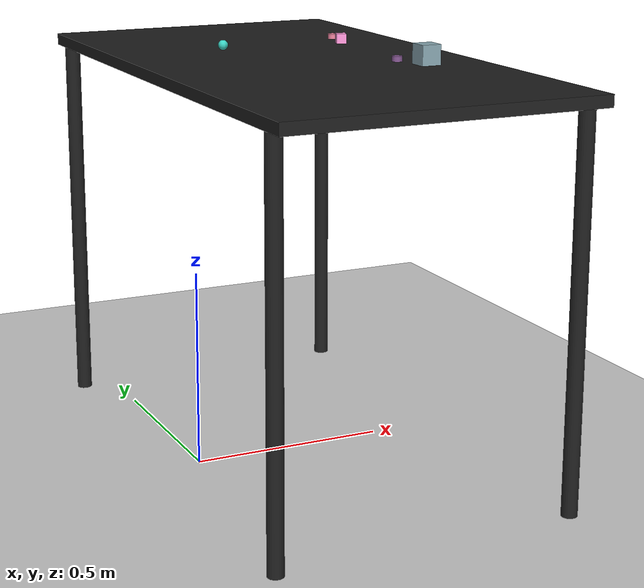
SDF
<?xml version="1.0" ?>
<sdf version="1.6">
  <world name="arm_world">
    <plugin filename="gz-sim-physics-system" name="gz::sim::systems::Physics">
      <engine>
        <filename>libgz-physics-bullet-featherstone-plugin.so</filename>
      </engine>
    </plugin>
    <plugin filename="gz-sim-user-commands-system" name="gz::sim::systems::UserCommands"/>
    <plugin filename="gz-sim-scene-broadcaster-system" name="gz::sim::systems::SceneBroadcaster"/>
    <plugin filename="gz-sim-sensors-system" name="gz::sim::systems::Sensors">
      <render_engine>ogre2</render_engine>
    </plugin>
    <gravity>0.0 0.0 -9.8</gravity>
    <scene>
      <shadows>false</shadows>
    </scene>
    <gui>
      <camera name="user_camera">
        <pose>0.75 -0.75 1.4 0 0.29 2.21</pose>
      </camera>
    </gui>
    <include>
      <uri>https://fuel.gazebosim.org/1.0/OpenRobotics/models/Sun</uri>
    </include>
    <model name="table">
      <static>true</static>
      <include>
        <uri>model://table</uri>
      </include>
      <pose>0.29 0 0 0 0 1.5708</pose>
    </model>
    <model name="ground_plane">
      <static>true</static>
      <link name="link">
        <collision name="collision">
          <geometry>
            <plane>
              <normal>0 0 1</normal>
            </plane>
          </geometry>
          <surface>
            <friction>
              <ode>
                <mu>1.0</mu>
                <mu2>1.0</mu2>
              </ode>
            </friction>
          </surface>
        </collision>
        <visual name="visual">
          <geometry>
            <plane>
              <normal>0 0 1</normal>
              <size>100 100</size>
            </plane>
          </geometry>
          <material>
            <ambient>0.8 0.8 0.8 1</ambient>
            <diffuse>0.8 0.8 0.8 1</diffuse>
            <specular>0.8 0.8 0.8 1</specular>
          </material>
        </visual>
      </link>
    </model>
    <model name="cube_s_0">
      <pose>0.44 0.089 1.05 0 0 5.97</pose>
      <link name="cube_s_0_link">
        <collision name="cube_s_0_collision">
          <geometry>
            <box>
              <size>0.025 0.025 0.025</size>
            </box>
          </geometry>
        </collision>
        <visual name="cube_s_0_visual">
          <geometry>
            <box>
              <size>0.025 0.025 0.025</size>
            </box>
          </geometry>
          <material>
            <ambient>1.0 0.6 0.86 1</ambient>
            <diffuse>1.0 0.6 0.86 1</diffuse>
          </material>
        </visual>
        <velocity_decay>
          <linear>1</linear>
          <angular>1</angular>
        </velocity_decay>
      </link>
    </model>
    <model name="cylinder_s_1">
      <pose>0.439 0.133 1.05 0 0 4.26</pose>
      <link name="cylinder_s_1_link">
        <collision name="cylinder_s_1_collision">
          <geometry>
            <cylinder>
              <radius>0.0125</radius>
              <length>0.0125</length>
            </cylinder>
          </geometry>
        </collision>
        <visual name="cylinder_s_1_visual">
          <geometry>
            <cylinder>
              <radius>0.0125</radius>
              <length>0.0125</length>
            </cylinder>
          </geometry>
          <material>
            <ambient>0.92 0.51 0.62 1</ambient>
            <diffuse>0.92 0.51 0.62 1</diffuse>
          </material>
        </visual>
        <velocity_decay>
          <linear>1</linear>
          <angular>1</angular>
        </velocity_decay>
      </link>
    </model>
    <model name="cube_m_2">
      <pose>0.5 -0.253 1.05 0 0 0.01</pose>
      <link name="cube_m_2_link">
        <collision name="cube_m_2_collision">
          <geometry>
            <box>
              <size>0.05 0.05 0.05</size>
            </box>
          </geometry>
        </collision>
        <visual name="cube_m_2_visual">
          <geometry>
            <box>
              <size>0.05 0.05 0.05</size>
            </box>
          </geometry>
          <material>
            <ambient>0.53 0.65 0.69 1</ambient>
            <diffuse>0.53 0.65 0.69 1</diffuse>
          </material>
        </visual>
        <velocity_decay>
          <linear>1</linear>
          <angular>1</angular>
        </velocity_decay>
      </link>
    </model>
    <model name="sphere_s_3">
      <pose>0.12 0.099 1.05 0 0 4.33</pose>
      <link name="sphere_s_3_link">
        <collision name="sphere_s_3_collision">
          <geometry>
            <sphere>
              <radius>0.0125</radius>
            </sphere>
          </geometry>
        </collision>
        <visual name="sphere_s_3_visual">
          <geometry>
            <sphere>
              <radius>0.0125</radius>
            </sphere>
          </geometry>
          <material>
            <ambient>0.22 0.81 0.75 1</ambient>
            <diffuse>0.22 0.81 0.75 1</diffuse>
          </material>
        </visual>
        <velocity_decay>
          <linear>1</linear>
          <angular>1</angular>
        </velocity_decay>
      </link>
    </model>
    <model name="cylinder_s_4">
      <pose>0.4 -0.291 1.05 0 0 1.25</pose>
      <link name="cylinder_s_4_link">
        <collision name="cylinder_s_4_collision">
          <geometry>
            <cylinder>
              <radius>0.0125</radius>
              <length>0.0125</length>
            </cylinder>
          </geometry>
        </collision>
        <visual name="cylinder_s_4_visual">
          <geometry>
            <cylinder>
              <radius>0.0125</radius>
              <length>0.0125</length>
            </cylinder>
          </geometry>
          <material>
            <ambient>0.52 0.34 0.57 1</ambient>
            <diffuse>0.52 0.34 0.57 1</diffuse>
          </material>
        </visual>
        <velocity_decay>
          <linear>1</linear>
          <angular>1</angular>
        </velocity_decay>
      </link>
    </model>
  </world>
</sdf>

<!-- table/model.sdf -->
<sdf version="1.5">
  <model name="table">
    <static>true</static>
    <link name="link">
      <collision name="surface">
        <pose>0 0 1.0 0 0 0</pose>
        <geometry>
          <box>
            <size>1.5 0.8 0.03</size>
          </box>
        </geometry>
        <surface>
          <friction>
            <ode>
              <mu>0.6</mu>
              <mu2>0.6</mu2>
            </ode>
          </friction>
        </surface>
      </collision>
      <visual name="surface">
        <pose>0 0 1.0 0 0 0</pose>
        <geometry>
          <box>
            <size>1.5 0.8 0.03</size>
          </box>
        </geometry>
        <material>
          <script>
            <uri>file://media/materials/scripts/gazebo.material</uri>
            <name>Gazebo/Black</name>
          </script>
        </material>
      </visual>
      <collision name="front_left_leg">
        <pose>0.68 0.38 0.5 0 0 0</pose>
        <geometry>
          <cylinder>
            <radius>0.02</radius>
            <length>1.0</length>
          </cylinder>
        </geometry>
      </collision>
      <visual name="front_left_leg">
        <pose>0.68 0.38 0.5 0 0 0</pose>
        <geometry>
          <cylinder>
            <radius>0.02</radius>
            <length>1.0</length>
          </cylinder>
        </geometry>
        <material>
          <script>
            <uri>file://media/materials/scripts/gazebo.material</uri>
            <name>Gazebo/Black</name>
          </script>
        </material>
      </visual>
      <collision name="front_right_leg">
        <pose>0.68 -0.38 0.5 0 0 0</pose>
        <geometry>
          <cylinder>
            <radius>0.02</radius>
            <length>1.0</length>
          </cylinder>
        </geometry>
      </collision>
      <visual name="front_right_leg">
        <pose>0.68 -0.38 0.5 0 0 0</pose>
        <geometry>
          <cylinder>
            <radius>0.02</radius>
            <length>1.0</length>
          </cylinder>
        </geometry>
        <material>
          <script>
            <uri>file://media/materials/scripts/gazebo.material</uri>
            <name>Gazebo/Black</name>
          </script>
        </material>
      </visual>
      <collision name="back_right_leg">
        <pose>-0.68 -0.38 0.5 0 0 0</pose>
        <geometry>
          <cylinder>
            <radius>0.02</radius>
            <length>1.0</length>
          </cylinder>
        </geometry>
      </collision>
      <visual name="back_right_leg">
        <pose>-0.68 -0.38 0.5 0 0 0</pose>
        <geometry>
          <cylinder>
            <radius>0.02</radius>
            <length>1.0</length>
          </cylinder>
        </geometry>
        <material>
          <script>
            <uri>file://media/materials/scripts/gazebo.material</uri>
            <name>Gazebo/Black</name>
          </script>
        </material>
      </visual>
      <collision name="back_left_leg">
        <pose>-0.68 0.38 0.5 0 0 0</pose>
        <geometry>
          <cylinder>
            <radius>0.02</radius>
            <length>1.0</length>
          </cylinder>
        </geometry>
      </collision>
      <visual name="back_left_leg">
        <pose>-0.68 0.38 0.5 0 0 0</pose>
        <geometry>
          <cylinder>
            <radius>0.02</radius>
            <length>1.0</length>
          </cylinder>
        </geometry>
        <material>
          <script>
            <uri>file://media/materials/scripts/gazebo.material</uri>
            <name>Gazebo/Black</name>
          </script>
        </material>
      </visual>
    </link>
  </model>
</sdf>
